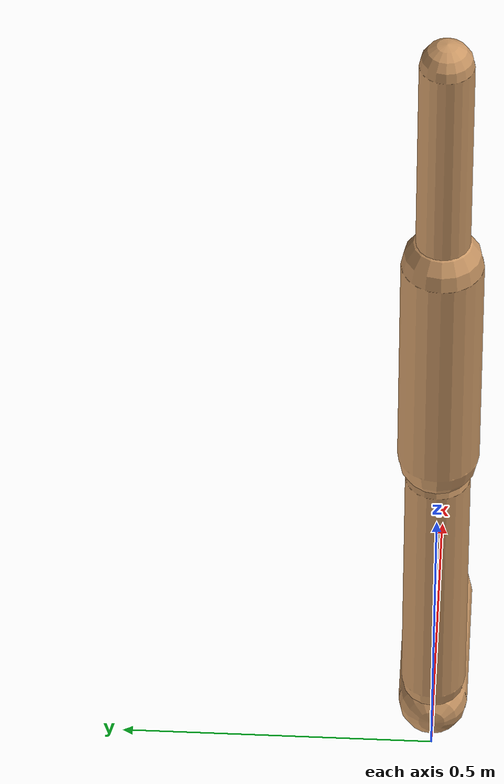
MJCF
<mujoco model="walker2d">
  <compiler angle="degree" coordinate="global" inertiafromgeom="true" />
  <default>
    <joint armature="0.01" damping=".1" limited="true" />
    <geom conaffinity="0" condim="3" contype="1" density="1000" friction="0.8 .1 .1" rgba="0.8 0.6 .4 1" />
  </default>
  <option integrator="RK4" timestep="0.002" />
  <worldbody>

    <body name="torso" pos="0 0 -0.10620219050705722">
      <joint armature="0" axis="1 0 0" damping="0" limited="false" name="ignorex" pos="0 0 0" stiffness="0" type="slide" />
      <joint armature="0" axis="0 0 1" damping="0" limited="false" name="ignorez" pos="0 0 0" ref="1.25" stiffness="0" type="slide" />
      <joint armature="0" axis="0 1 0" damping="0" limited="false" name="ignorey" pos="0 0 0" stiffness="0" type="hinge" />
      <geom fromto="0 0 1.45 0 0 1.05" name="torso_geom" size="0.04192324422779719" type="capsule" />
      <body name="thigh">
        <joint axis="0 -1 0" name="thigh_joint" pos="0 0 1.05" range="-150 0" type="hinge" />
        <geom fromto="0.0 0.0 1.05 0.0 0.0 0.6503063007665008" name="thigh_geom" size="0.06387891973912022" type="capsule" />
        <body name="leg" pos="0.0 0.0 0.05030630076650078">
          <joint axis="0 -1 0" name="leg_joint" pos="0 0 0.6" range="-150 0" type="hinge" />
          <geom fromto="0.0 0.0 0.6 0.0 0.0 0.15589588974055643" name="leg_geom" size="0.05110313579129617" type="capsule" />
          <body name="foot" pos="0.0 0.0 0.055895889740556426">
            <joint axis="0 -1 0" name="foot_joint" pos="0 0 0.1" range="-45 45" type="hinge" />
            <geom fromto="-0.0 0.0 0.1 0.2495009098284093 0.0 0.1" name="foot_geom" size="0.05498530771704696" type="capsule" />
          </body>
        </body>
      </body>

      <body name="thigh_left">
        <joint axis="0 -1 0" name="thigh_left_joint" pos="0 0 1.05" range="-150 0" type="hinge" />
        <geom fromto="0.0 0.0 1.05 0.0 0.0 0.6503063007665008" name="thigh_left_geom" rgba=".7 .3 .6 1" size="0.06387891973912022" type="capsule" />
        <body name="leg_left" pos="0.0 0.0 0.05030630076650078">
          <joint axis="0 -1 0" name="leg_left_joint" pos="0 0 0.6" range="-150 0" type="hinge" />
          <geom fromto="0.0 0.0 0.6 0.0 0.0 0.15589588974055643" name="leg_left_geom" rgba=".7 .3 .6 1" size="0.05110313579129617" type="capsule" />
          <body name="foot_left" pos="0.0 0.0 0.055895889740556426">
            <joint axis="0 -1 0" name="foot_left_joint" pos="0 0 0.1" range="-45 45" type="hinge" />
            <geom fromto="-0.0 0.0 0.1 0.2495009098284093 0.0 0.1" name="foot_left_geom" rgba=".7 .3 .6 1" size="0.05498530771704696" type="capsule" />
          </body>
        </body>
      </body>
    </body>
  </worldbody>
  <actuator>

    <motor ctrllimited="true" ctrlrange="-1.0 1.0" gear="100" joint="thigh_joint" />
    <motor ctrllimited="true" ctrlrange="-1.0 1.0" gear="100" joint="leg_joint" />
    <motor ctrllimited="true" ctrlrange="-1.0 1.0" gear="100" joint="foot_joint" />
    <motor ctrllimited="true" ctrlrange="-1.0 1.0" gear="100" joint="thigh_left_joint" />
    <motor ctrllimited="true" ctrlrange="-1.0 1.0" gear="100" joint="leg_left_joint" />
    <motor ctrllimited="true" ctrlrange="-1.0 1.0" gear="100" joint="foot_left_joint" />

  </actuator>
</mujoco>
